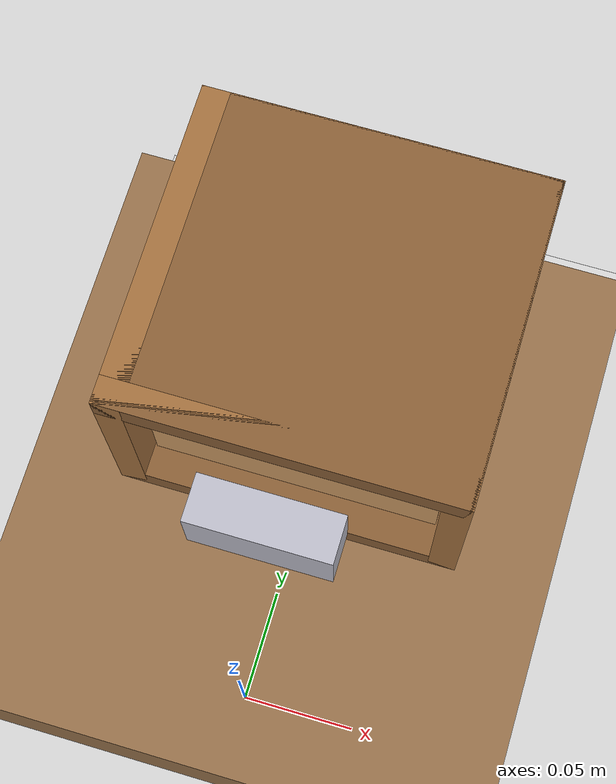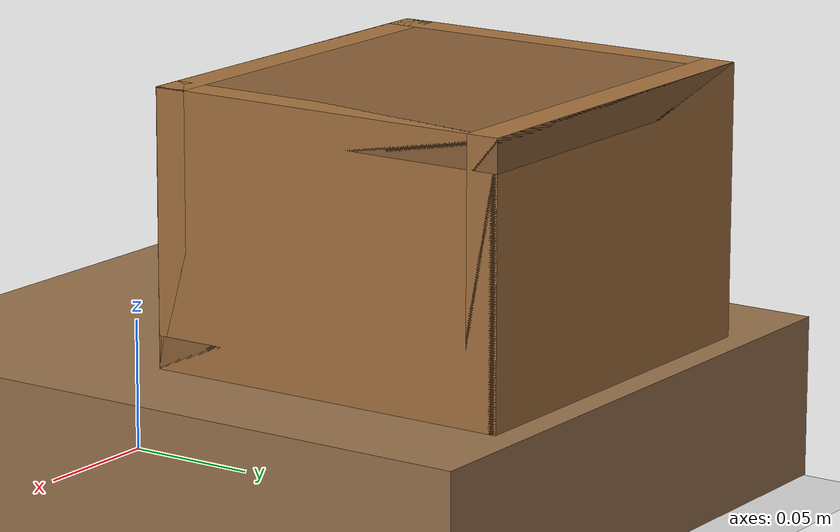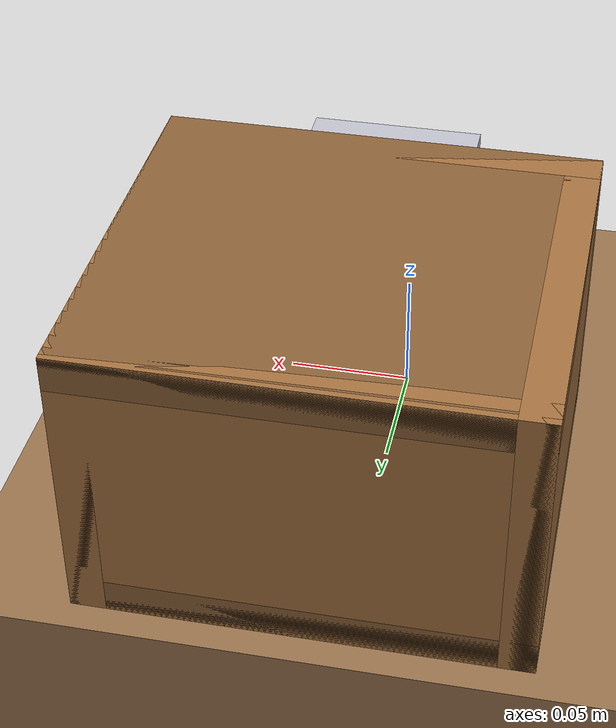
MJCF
<mujoco model="open_close_drawer_demo">

  <visual>
    <map znear="0.001"/>
  </visual>

  <worldbody>
    <light name="demo_light" pos="0 0 1.5" dir="0 0 -1"/>
    <geom name="floor" type="plane" size="2 2 0.1" rgba="0.85 0.85 0.85 1"/>

    <!-- table half-height=0.03, sits on floor: center z=0.03, top surface z=0.06 -->
    <body name="table" pos="0 0 0.03">
      <geom name="table_top" type="box" size="0.28 0.22 0.03" rgba="0.6 0.45 0.3 1"/>
    </body>

    <!-- Front camera: looking from -Y toward the task area -->
    <camera name="env1_cam" pos="0 -0.8 0.5" xyaxes="1 0 0 0 0.447 0.894" fovy="45"/>
    <!-- Side camera: looking from +X toward the task area -->
    <camera name="env0_cam" pos="0.9 0 0.5" xyaxes="0 1 0 -0.406 0 0.914" fovy="45"/>

    <!-- ===== Cabinet frame (static, visual only) ===== -->
    <!-- Outer half: x=0.075, y=0.070, z=0.050                         -->
    <!-- Center at (0, 0.14, 0.11): bottom z=0.06, top z=0.16          -->
    <!-- Front face y=0.070, back face y=0.210                          -->
    <body name="cabinet" pos="0.0 0.14 0.11">
      <geom name="cab_back"      type="box" size="0.075 0.006 0.050" pos="0       0.064  0     " density="0" rgba="0.65 0.45 0.25 1" contype="0" conaffinity="0" group="1"/>
      <geom name="cab_left"      type="box" size="0.006 0.070 0.050" pos="-0.069 0      0     " density="0" rgba="0.65 0.45 0.25 1" contype="0" conaffinity="0" group="1"/>
      <geom name="cab_right"     type="box" size="0.006 0.070 0.050" pos=" 0.069 0      0     " density="0" rgba="0.65 0.45 0.25 1" contype="0" conaffinity="0" group="1"/>
      <geom name="cab_top"       type="box" size="0.075 0.070 0.006" pos="0       0      0.044" density="0" rgba="0.55 0.38 0.22 1" contype="0" conaffinity="0" group="1"/>
      <geom name="cab_floor"     type="box" size="0.075 0.070 0.006" pos="0       0     -0.044" density="0" rgba="0.55 0.38 0.22 1" contype="0" conaffinity="0" group="1"/>
      <!-- Narrow front trim strips (top and sides) so cabinet looks like a frame -->
      <geom name="cab_trim_top"  type="box" size="0.075 0.006 0.006" pos="0      -0.064  0.044" density="0" rgba="0.65 0.45 0.25 1" contype="0" conaffinity="0" group="1"/>
      <geom name="cab_trim_left" type="box" size="0.006 0.006 0.050" pos="-0.069 -0.064  0    " density="0" rgba="0.65 0.45 0.25 1" contype="0" conaffinity="0" group="1"/>
      <geom name="cab_trim_rgt"  type="box" size="0.006 0.006 0.050" pos=" 0.069 -0.064  0    " density="0" rgba="0.65 0.45 0.25 1" contype="0" conaffinity="0" group="1"/>
      <site name="cabinet_site" pos="0 0 0" size="0.004" rgba="0 1 0 0"/>
    </body>

    <!-- ===== Drawer (slides in Y; negative Y = opening toward arm) ===== -->
    <!-- Base position same as cabinet center; slide joint named drawer_slide  -->
    <!-- so it is NOT auto-detected as a freejoint by build_mujoco_backend.    -->
    <!-- joint=0: closed (flush with cabinet front), joint=-0.12: fully open   -->
    <body name="drawer" pos="0.0 0.14 0.11">
      <joint name="drawer_slide" type="slide" axis="0 1 0" range="-0.12 0" damping="5"/>
      <geom name="drawer_col" type="box" size="0.062 0.056 0.038" mass="0.20"
            friction="0.5 0.05 0.01" rgba="0 0 0 0" contype="1" conaffinity="1"/>
      <geom name="drawer_vis" type="box" size="0.062 0.056 0.038"
            rgba="0.82 0.62 0.40 1" density="0" contype="0" conaffinity="0" group="1"/>
      <site name="drawer_site" pos="0 0 0" size="0.004" rgba="0 0 1 0"/>

      <!-- ===== Drawer handle (child of drawer, no joint) ===== -->
      <!-- Flat horizontal bar in front of the cabinet (y < cabinet_front=0.07). -->
      <!-- pos relative to drawer center: (0, -(0.056+0.035), +0.022)           -->
      <!-- When closed: world (0, 0.049, 0.132); when open: (0, -0.071, 0.132)  -->
      <!-- Gripper fingers (±42 mm span) pass either side of the ±30 mm bar     -->
      <!-- during descent, then close to grasp. No collision during approach.   -->
      <body name="handle" pos="0.0 -0.091 0.022">
        <geom name="handle_col" type="box" size="0.030 0.010 0.015" mass="0.02"
              friction="1.2 0.05 0.01" rgba="0 0 0 0" contype="1" conaffinity="1"/>
        <geom name="handle_vis" type="box" size="0.030 0.010 0.015"
              rgba="0.75 0.75 0.80 1" density="0" contype="0" conaffinity="0" group="1"/>
        <site name="handle_site" pos="0 0 0" size="0.004" rgba="1 0 0 0"/>
      </body>
    </body>
  </worldbody>

  <!-- ===== Initial state ===== -->
  <!-- qpos layout: robotiq freejoint (7: x y z qw qx qy qz) + 6 gripper joints + 1 drawer slide -->
  <!-- Arm starts horizontal: rot_x=pi/2 → gripper points +Y toward cabinet, fingers in ±Z (one up/down) -->
</mujoco>
